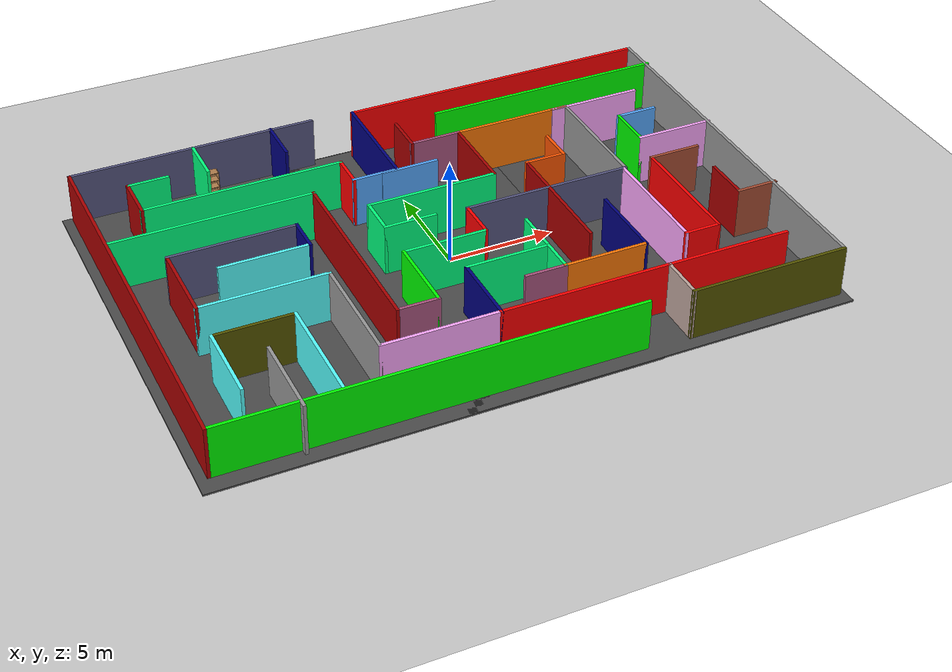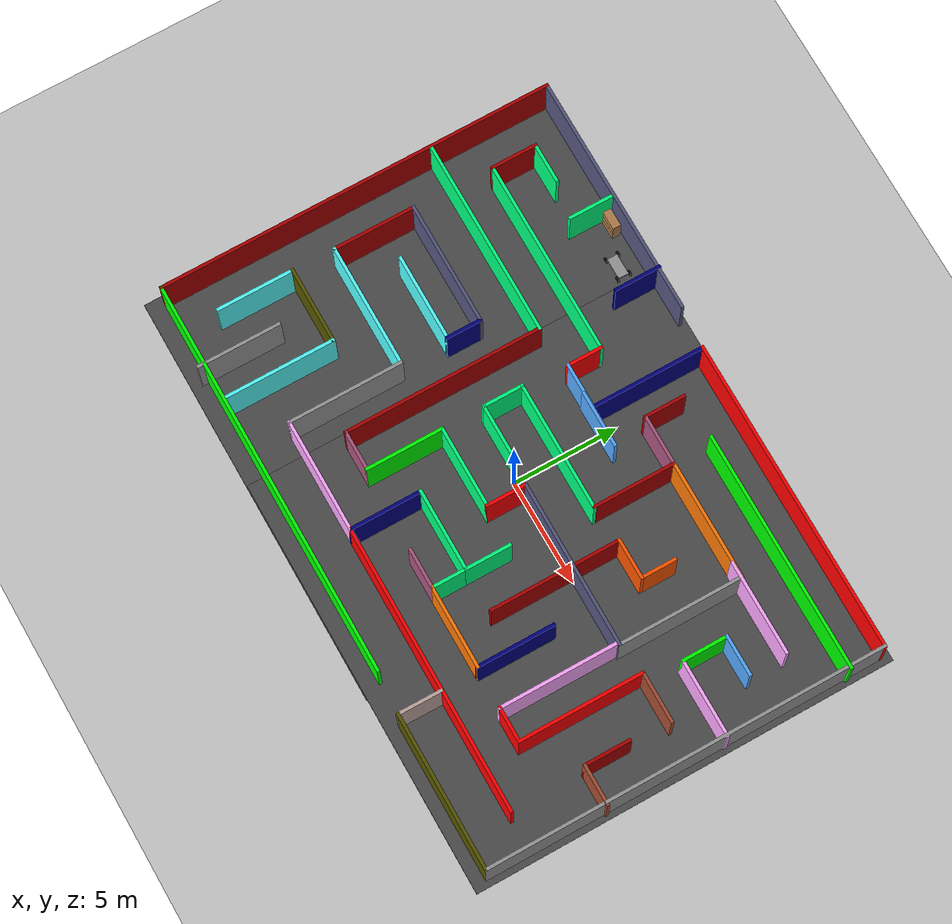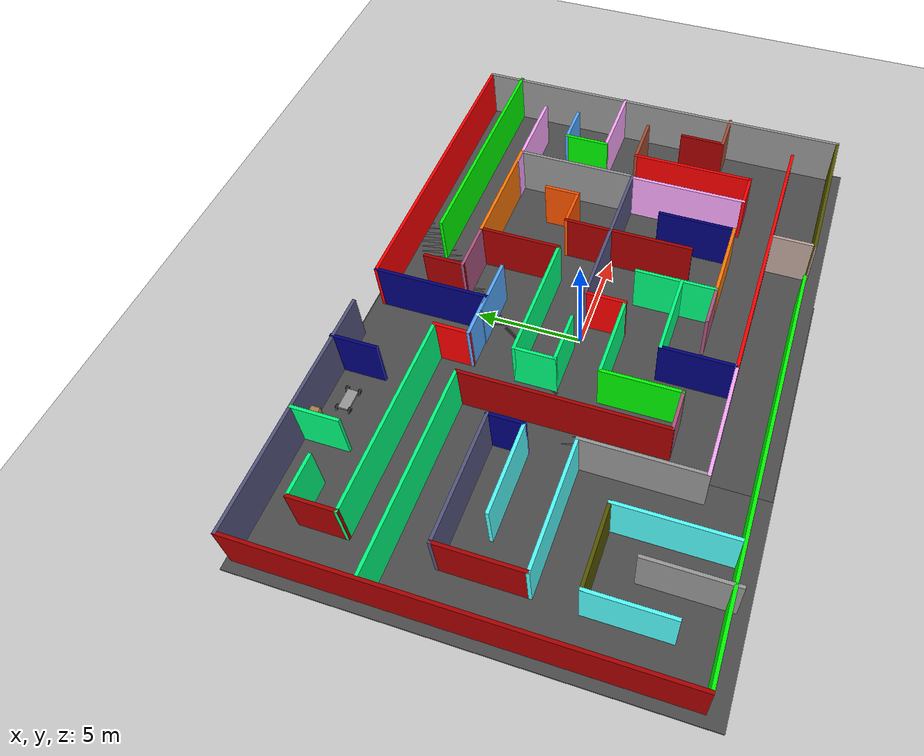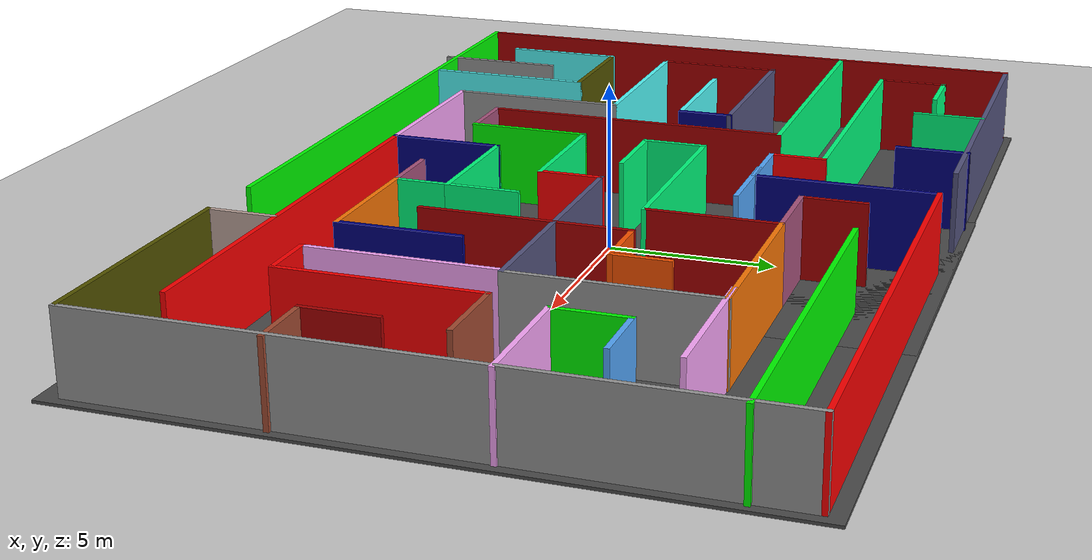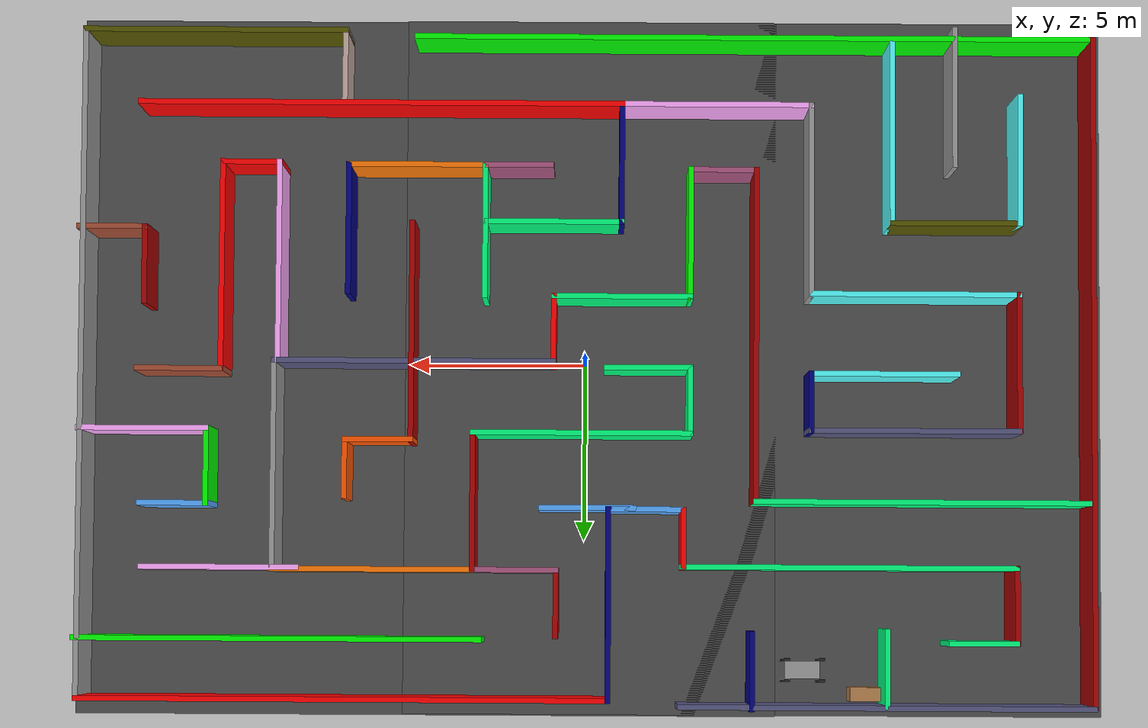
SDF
<sdf version="1.6">
 <world name="default">
  <model name="ground_plane">
   <static>1</static>
   <link name="link">
    <collision name="collision">
     <geometry><plane><normal>0 0 1</normal><size>100 100</size></plane></geometry>
     <surface><friction><ode><mu>100</mu><mu2>50</mu2></ode></friction></surface>
    </collision>
    <visual name="visual">
     <cast_shadows>0</cast_shadows>
     <geometry><plane><normal>0 0 1</normal><size>100 100</size></plane></geometry>
     <material>
      <script><uri>file://media/materials/scripts/gazebo.material</uri><name>Gazebo/Grey</name></script>
     </material>
    </visual>
   </link>
  </model>
  <model name="medium_coloured_maze">
   <pose>-0.015602 0.148995 0 0 -0 0</pose>
   <link name="Wall_0">
    <collision name="Wall_0_Collision">
     <geometry><box><size>19 0.15 2.5</size></box></geometry>
     <pose>0 0 1.25 0 -0 0</pose>
    </collision>
    <visual name="Wall_0_Visual">
     <pose>0 0 1.25 0 -0 0</pose>
     <geometry><box><size>19 0.15 2.5</size></box></geometry>
     <material>
      <script><uri>file://media/materials/scripts/gazebo.material</uri><name>Gazebo/Grey</name></script>
      <ambient>0.666667 0 0 1</ambient>
     </material>
    </visual>
    <pose>-14.2862 0.111227 0 0 0 -1.5708</pose>
   </link>
   <link name="Wall_1">
    <collision name="Wall_1_Collision">
     <geometry><box><size>19.25 0.15 2.5</size></box></geometry>
     <pose>0 0 1.25 0 -0 0</pose>
    </collision>
    <visual name="Wall_1_Visual">
     <pose>0 0 1.25 0 -0 0</pose>
     <geometry><box><size>19.25 0.15 2.5</size></box></geometry>
     <material>
      <script><uri>file://media/materials/scripts/gazebo.material</uri><name>Gazebo/Grey</name></script>
      <ambient>0 1 0 1</ambient>
     </material>
    </visual>
    <pose>-4.73615 -9.31377 0 0 -0 0</pose>
   </link>
   <link name="Wall_10">
    <collision name="Wall_10_Collision">
     <geometry><box><size>2.25 0.15 2.5</size></box></geometry>
     <pose>0 0 1.25 0 -0 0</pose>
    </collision>
    <visual name="Wall_10_Visual">
     <pose>0 0 1.25 0 -0 0</pose>
     <geometry><box><size>2.25 0.15 2.5</size></box></geometry>
     <material>
      <script><uri>file://media/materials/scripts/gazebo.material</uri><name>Gazebo/Grey</name></script>
      <ambient>0.666667 0 0 1</ambient>
     </material>
    </visual>
    <pose>-12.1169 6.6789 0 0 -0 1.5708</pose>
   </link>
   <link name="Wall_11">
    <collision name="Wall_11_Collision">
     <geometry><box><size>2 0.15 2.5</size></box></geometry>
     <pose>0 0 1.25 0 -0 0</pose>
    </collision>
    <visual name="Wall_11_Visual">
     <pose>0 0 1.25 0 -0 0</pose>
     <geometry><box><size>2 0.15 2.5</size></box></geometry>
     <material>
      <script><uri>file://media/materials/scripts/gazebo.material</uri><name>Gazebo/Grey</name></script>
      <ambient>0 1 0.498039 1</ambient>
     </material>
    </visual>
    <pose>-11.1919 7.7289 0 0 -0 0</pose>
   </link>
   <link name="Wall_13">
    <collision name="Wall_13_Collision">
     <geometry><box><size>11.75 0.15 2.5</size></box></geometry>
     <pose>0 0 1.25 0 -0 0</pose>
    </collision>
    <visual name="Wall_13_Visual">
     <pose>0 0 1.25 0 -0 0</pose>
     <geometry><box><size>11.75 0.15 2.5</size></box></geometry>
     <material>
      <script><uri>file://media/materials/scripts/gazebo.material</uri><name>Gazebo/Grey</name></script>
      <ambient>0.333333 0.333333 0.498039 1</ambient>
     </material>
    </visual>
    <pose>-8.48615 9.53623 0 0 -0 0</pose>
   </link>
   <link name="Wall_15">
    <collision name="Wall_15_Collision">
     <geometry><box><size>2.25 0.15 2.5</size></box></geometry>
     <pose>0 0 1.25 0 -0 0</pose>
    </collision>
    <visual name="Wall_15_Visual">
     <pose>0 0 1.25 0 -0 0</pose>
     <geometry><box><size>2.25 0.15 2.5</size></box></geometry>
     <material>
      <script><uri>file://media/materials/scripts/gazebo.material</uri><name>Gazebo/Grey</name></script>
      <ambient>0 1 0.498039 1</ambient>
     </material>
    </visual>
    <pose>-8.47981 8.45384 0 0 0 -1.5708</pose>
   </link>
   <link name="Wall_18">
    <collision name="Wall_18_Collision">
     <geometry><box><size>2.25 0.15 2.5</size></box></geometry>
     <pose>0 0 1.25 0 -0 0</pose>
    </collision>
    <visual name="Wall_18_Visual">
     <pose>0 0 1.25 0 -0 0</pose>
     <geometry><box><size>2.25 0.15 2.5</size></box></geometry>
     <material>
      <script><uri>file://media/materials/scripts/gazebo.material</uri><name>Gazebo/Grey</name></script>
      <ambient>0 0 0.498039 1</ambient>
     </material>
    </visual>
    <pose>-4.69991 8.53531 0 0 0 -1.5708</pose>
   </link>
   <link name="Wall_20">
    <collision name="Wall_20_Collision">
     <geometry><box><size>9.5 0.15 2.5</size></box></geometry>
     <pose>0 0 1.25 0 -0 0</pose>
    </collision>
    <visual name="Wall_20_Visual">
     <pose>0 0 1.25 0 -0 0</pose>
     <geometry><box><size>9.5 0.15 2.5</size></box></geometry>
     <material>
      <script><uri>file://media/materials/scripts/gazebo.material</uri><name>Gazebo/Grey</name></script>
      <ambient>0 1 0.498039 1</ambient>
     </material>
    </visual>
    <pose>-9.46955 3.79078 0 0 -0 0</pose>
   </link>
   <link name="Wall_21">
    <collision name="Wall_21_Collision">
     <geometry><box><size>9.5 0.15 2.5</size></box></geometry>
     <pose>0 0 1.25 0 -0 0</pose>
    </collision>
    <visual name="Wall_21_Visual">
     <pose>0 0 1.25 0 -0 0</pose>
     <geometry><box><size>9.5 0.15 2.5</size></box></geometry>
     <material>
      <script><uri>file://media/materials/scripts/gazebo.material</uri><name>Gazebo/Grey</name></script>
      <ambient>0.666667 0 0 1</ambient>
     </material>
    </visual>
    <pose>-4.79455 -0.884224 0 0 0 -1.5708</pose>
   </link>
   <link name="Wall_22">
    <collision name="Wall_22_Collision">
     <geometry><box><size>2 0.15 2.5</size></box></geometry>
     <pose>0 0 1.25 0 -0 0</pose>
    </collision>
    <visual name="Wall_22_Visual">
     <pose>0 0 1.25 0 -0 0</pose>
     <geometry><box><size>2 0.15 2.5</size></box></geometry>
     <material>
      <script><uri>file://media/materials/scripts/gazebo.material</uri><name>Gazebo/Grey</name></script>
      <ambient>0.666667 0.333333 0.498039 1</ambient>
     </material>
    </visual>
    <pose>-3.86955 -5.55922 0 0 -0 0</pose>
   </link>
   <link name="Wall_23">
    <collision name="Wall_23_Collision">
     <geometry><box><size>3.75 0.15 2.5</size></box></geometry>
     <pose>0 0 1.25 0 -0 0</pose>
    </collision>
    <visual name="Wall_23_Visual">
     <pose>0 0 1.25 0 -0 0</pose>
     <geometry><box><size>3.75 0.15 2.5</size></box></geometry>
     <material>
      <script><uri>file://media/materials/scripts/gazebo.material</uri><name>Gazebo/Grey</name></script>
      <ambient>0 1 0 1</ambient>
     </material>
    </visual>
    <pose>-2.94455 -3.75922 0 0 -0 1.5708</pose>
   </link>
   <link name="Wall_24">
    <collision name="Wall_24_Collision">
     <geometry><box><size>4 0.15 2.5</size></box></geometry>
     <pose>0 0 1.25 0 -0 0</pose>
    </collision>
    <visual name="Wall_24_Visual">
     <pose>0 0 1.25 0 -0 0</pose>
     <geometry><box><size>4 0.15 2.5</size></box></geometry>
     <material>
      <script><uri>file://media/materials/scripts/gazebo.material</uri><name>Gazebo/Grey</name></script>
      <ambient>0 1 0.498039 1</ambient>
     </material>
    </visual>
    <pose>-1.01955 -1.95922 0 0 -0 0</pose>
   </link>
   <link name="Wall_25">
    <collision name="Wall_25_Collision">
     <geometry><box><size>2 0.15 2.5</size></box></geometry>
     <pose>0 0 1.25 0 -0 0</pose>
    </collision>
    <visual name="Wall_25_Visual">
     <pose>0 0 1.25 0 -0 0</pose>
     <geometry><box><size>2 0.15 2.5</size></box></geometry>
     <material>
      <script><uri>file://media/materials/scripts/gazebo.material</uri><name>Gazebo/Grey</name></script>
      <ambient>1 0 0 1</ambient>
     </material>
    </visual>
    <pose>0.905454 -1.03422 0 0 -0 1.5708</pose>
   </link>
   <link name="Wall_26">
    <collision name="Wall_26_Collision">
     <geometry><box><size>8 0.15 2.5</size></box></geometry>
     <pose>0 0 1.25 0 -0 0</pose>
    </collision>
    <visual name="Wall_26_Visual">
     <pose>0 0 1.25 0 -0 0</pose>
     <geometry><box><size>8 0.15 2.5</size></box></geometry>
     <material>
      <script><uri>file://media/materials/scripts/gazebo.material</uri><name>Gazebo/Grey</name></script>
      <ambient>0.333333 0.333333 0.498039 1</ambient>
     </material>
    </visual>
    <pose>4.83045 -0.109224 0 0 -0 0</pose>
   </link>
   <link name="Wall_27">
    <collision name="Wall_27_Collision">
     <geometry><box><size>6 0.15 2.5</size></box></geometry>
     <pose>0 0 1.25 0 -0 0</pose>
    </collision>
    <visual name="Wall_27_Visual">
     <pose>0 0 1.25 0 -0 0</pose>
     <geometry><box><size>6 0.15 2.5</size></box></geometry>
     <material>
      <script><uri>file://media/materials/scripts/gazebo.material</uri><name>Gazebo/Grey</name></script>
      <ambient>0 0 0 1</ambient>
     </material>
    </visual>
    <pose>8.75545 2.81578 0 0 -0 1.5708</pose>
   </link>
   <link name="Wall_28">
    <collision name="Wall_28_Collision">
     <geometry><box><size>5.75 0.15 2.5</size></box></geometry>
     <pose>0 0 1.25 0 -0 0</pose>
    </collision>
    <visual name="Wall_28_Visual">
     <pose>0 0 1.25 0 -0 0</pose>
     <geometry><box><size>5.75 0.15 2.5</size></box></geometry>
     <material>
      <script><uri>file://media/materials/scripts/gazebo.material</uri><name>Gazebo/Grey</name></script>
      <ambient>0.996078 0.47451 0.0196078 1</ambient>
     </material>
    </visual>
    <pose>5.95545 5.74078 0 0 -0 3.14159</pose>
   </link>
   <link name="Wall_29">
    <collision name="Wall_29_Collision">
     <geometry><box><size>4 0.15 2.5</size></box></geometry>
     <pose>0 0 1.25 0 -0 0</pose>
    </collision>
    <visual name="Wall_29_Visual">
     <pose>0 0 1.25 0 -0 0</pose>
     <geometry><box><size>4 0.15 2.5</size></box></geometry>
     <material>
      <script><uri>file://media/materials/scripts/gazebo.material</uri><name>Gazebo/Grey</name></script>
      <ambient>0.666667 0 0 1</ambient>
     </material>
    </visual>
    <pose>3.15545 3.81578 0 0 0 -1.5708</pose>
   </link>
   <link name="Wall_3">
    <collision name="Wall_3_Collision">
     <geometry><box><size>7.5 0.15 2.5</size></box></geometry>
     <pose>0 0 1.25 0 -0 0</pose>
    </collision>
    <visual name="Wall_3_Visual">
     <pose>0 0 1.25 0 -0 0</pose>
     <geometry><box><size>7.5 0.15 2.5</size></box></geometry>
     <material>
      <script><uri>file://media/materials/scripts/gazebo.material</uri><name>Gazebo/Grey</name></script>
      <ambient>0.333333 0.333333 0 1</ambient>
     </material>
    </visual>
    <pose>10.5081 -9.4711 0 0 -0 0</pose>
   </link>
   <link name="Wall_30">
    <collision name="Wall_30_Collision">
     <geometry><box><size>6.25 0.15 2.5</size></box></geometry>
     <pose>0 0 1.25 0 -0 0</pose>
    </collision>
    <visual name="Wall_30_Visual">
     <pose>0 0 1.25 0 -0 0</pose>
     <geometry><box><size>6.25 0.15 2.5</size></box></geometry>
     <material>
      <script><uri>file://media/materials/scripts/gazebo.material</uri><name>Gazebo/Grey</name></script>
      <ambient>0 1 0.498039 1</ambient>
     </material>
    </visual>
    <pose>0.105454 1.89078 0 0 -0 3.14159</pose>
   </link>
   <link name="Wall_31">
    <collision name="Wall_31_Collision">
     <geometry><box><size>2 0.15 2.5</size></box></geometry>
     <pose>0 0 1.25 0 -0 0</pose>
    </collision>
    <visual name="Wall_31_Visual">
     <pose>0 0 1.25 0 -0 0</pose>
     <geometry><box><size>2 0.15 2.5</size></box></geometry>
     <material>
      <script><uri>file://media/materials/scripts/gazebo.material</uri><name>Gazebo/Grey</name></script>
      <ambient>0 1 0.498039 1</ambient>
     </material>
    </visual>
    <pose>-2.94455 0.965776 0 0 0 -1.5708</pose>
   </link>
   <link name="Wall_32">
    <collision name="Wall_32_Collision">
     <geometry><box><size>2.5 0.15 2.5</size></box></geometry>
     <pose>0 0 1.25 0 -0 0</pose>
    </collision>
    <visual name="Wall_32_Visual">
     <pose>0 0 1.25 0 -0 0</pose>
     <geometry><box><size>2.5 0.15 2.5</size></box></geometry>
     <material>
      <script><uri>file://media/materials/scripts/gazebo.material</uri><name>Gazebo/Grey</name></script>
      <ambient>0 1 0.498039 1</ambient>
     </material>
    </visual>
    <pose>-1.76955 0.040776 0 0 -0 0</pose>
   </link>
   <link name="Wall_34">
    <collision name="Wall_34_Collision">
     <geometry><box><size>4.25 0.15 2.5</size></box></geometry>
     <pose>0 0 1.25 0 -0 0</pose>
    </collision>
    <visual name="Wall_34_Visual">
     <pose>0 0 1.25 0 -0 0</pose>
     <geometry><box><size>4.25 0.15 2.5</size></box></geometry>
     <material>
      <script><uri>file://media/materials/scripts/gazebo.material</uri><name>Gazebo/Grey</name></script>
      <ambient>0.333333 1 1 1</ambient>
     </material>
    </visual>
    <pose>-8.39882 0.186302 0 0 -0 0</pose>
   </link>
   <link name="Wall_35">
    <collision name="Wall_35_Collision">
     <geometry><box><size>1.75 0.15 2.5</size></box></geometry>
     <pose>0 0 1.25 0 -0 0</pose>
    </collision>
    <visual name="Wall_35_Visual">
     <pose>0 0 1.25 0 -0 0</pose>
     <geometry><box><size>1.75 0.15 2.5</size></box></geometry>
     <material>
      <script><uri>file://media/materials/scripts/gazebo.material</uri><name>Gazebo/Grey</name></script>
      <ambient>0 0 0.498039 1</ambient>
     </material>
    </visual>
    <pose>-6.34882 0.986302 0 0 -0 1.5708</pose>
   </link>
   <link name="Wall_36">
    <collision name="Wall_36_Collision">
     <geometry><box><size>6 0.15 2.5</size></box></geometry>
     <pose>0 0 1.25 0 -0 0</pose>
    </collision>
    <visual name="Wall_36_Visual">
     <pose>0 0 1.25 0 -0 0</pose>
     <geometry><box><size>6 0.15 2.5</size></box></geometry>
     <material>
      <script><uri>file://media/materials/scripts/gazebo.material</uri><name>Gazebo/Grey</name></script>
      <ambient>0.333333 0.333333 0.498039 1</ambient>
     </material>
    </visual>
    <pose>-9.27382 1.7863 0 0 -0 3.14159</pose>
   </link>
   <link name="Wall_37">
    <collision name="Wall_37_Collision">
     <geometry><box><size>4 0.15 2.5</size></box></geometry>
     <pose>0 0 1.25 0 -0 0</pose>
    </collision>
    <visual name="Wall_37_Visual">
     <pose>0 0 1.25 0 -0 0</pose>
     <geometry><box><size>4 0.15 2.5</size></box></geometry>
     <material>
      <script><uri>file://media/materials/scripts/gazebo.material</uri><name>Gazebo/Grey</name></script>
      <ambient>0.666667 0 0 1</ambient>
     </material>
    </visual>
    <pose>-12.1988 -0.138698 0 0 0 -1.5708</pose>
   </link>
   <link name="Wall_38">
    <collision name="Wall_38_Collision">
     <geometry><box><size>6 0.15 2.5</size></box></geometry>
     <pose>0 0 1.25 0 -0 0</pose>
    </collision>
    <visual name="Wall_38_Visual">
     <pose>0 0 1.25 0 -0 0</pose>
     <geometry><box><size>6 0.15 2.5</size></box></geometry>
     <material>
      <script><uri>file://media/materials/scripts/gazebo.material</uri><name>Gazebo/Grey</name></script>
      <ambient>0.333333 1 1 1</ambient>
     </material>
    </visual>
    <pose>-9.27382 -2.0637 0 0 -0 0</pose>
   </link>
   <link name="Wall_39">
    <collision name="Wall_39_Collision">
     <geometry><box><size>5.5 0.15 2.5</size></box></geometry>
     <pose>0 0 1.25 0 -0 0</pose>
    </collision>
    <visual name="Wall_39_Visual">
     <pose>0 0 1.25 0 -0 0</pose>
     <geometry><box><size>5.5 0.15 2.5</size></box></geometry>
     <material>
      <script><uri>file://media/materials/scripts/gazebo.material</uri><name>Gazebo/Grey</name></script>
      <ambient>0 0 0 1</ambient>
     </material>
    </visual>
    <pose>-6.34882 -4.7387 0 0 0 -1.5708</pose>
   </link>
   <link name="Wall_4">
    <collision name="Wall_4_Collision">
     <geometry><box><size>19 0.15 2.5</size></box></geometry>
     <pose>0 0 1.25 0 -0 0</pose>
    </collision>
    <visual name="Wall_4_Visual">
     <pose>0 0 1.25 0 -0 0</pose>
     <geometry><box><size>19 0.15 2.5</size></box></geometry>
     <material>
      <script><uri>file://media/materials/scripts/gazebo.material</uri><name>Gazebo/Grey</name></script>
      <ambient>0 0 0 1</ambient>
     </material>
    </visual>
    <pose>14.1831 -0.046098 0 0 -0 1.5708</pose>
   </link>
   <link name="Wall_40">
    <collision name="Wall_40_Collision">
     <geometry><box><size>5.5 0.15 2.5</size></box></geometry>
     <pose>0 0 1.25 0 -0 0</pose>
    </collision>
    <visual name="Wall_40_Visual">
     <pose>0 0 1.25 0 -0 0</pose>
     <geometry><box><size>5.5 0.15 2.5</size></box></geometry>
     <material>
      <script><uri>file://media/materials/scripts/gazebo.material</uri><name>Gazebo/Grey</name></script>
      <ambient>1 0.666667 1 1</ambient>
     </material>
    </visual>
    <pose>-3.67382 -7.4137 0 0 -0 0</pose>
   </link>
   <link name="Wall_41">
    <collision name="Wall_41_Collision">
     <geometry><box><size>3.5 0.15 2.5</size></box></geometry>
     <pose>0 0 1.25 0 -0 0</pose>
    </collision>
    <visual name="Wall_41_Visual">
     <pose>0 0 1.25 0 -0 0</pose>
     <geometry><box><size>3.5 0.15 2.5</size></box></geometry>
     <material>
      <script><uri>file://media/materials/scripts/gazebo.material</uri><name>Gazebo/Grey</name></script>
      <ambient>0 0 0.498039 1</ambient>
     </material>
    </visual>
    <pose>-0.99882 -5.7387 0 0 -0 1.5708</pose>
   </link>
   <link name="Wall_42">
    <collision name="Wall_42_Collision">
     <geometry><box><size>4 0.15 2.5</size></box></geometry>
     <pose>0 0 1.25 0 -0 0</pose>
    </collision>
    <visual name="Wall_42_Visual">
     <pose>0 0 1.25 0 -0 0</pose>
     <geometry><box><size>4 0.15 2.5</size></box></geometry>
     <material>
      <script><uri>file://media/materials/scripts/gazebo.material</uri><name>Gazebo/Grey</name></script>
      <ambient>0 1 0.498039 1</ambient>
     </material>
    </visual>
    <pose>0.92618 -4.0637 0 0 -0 0</pose>
   </link>
   <link name="Wall_43">
    <collision name="Wall_43_Collision">
     <geometry><box><size>1.75 0.15 2.5</size></box></geometry>
     <pose>0 0 1.25 0 -0 0</pose>
    </collision>
    <visual name="Wall_43_Visual">
     <pose>0 0 1.25 0 -0 0</pose>
     <geometry><box><size>1.75 0.15 2.5</size></box></geometry>
     <material>
      <script><uri>file://media/materials/scripts/gazebo.material</uri><name>Gazebo/Grey</name></script>
      <ambient>0 1 0.498039 1</ambient>
     </material>
    </visual>
    <pose>2.85118 -4.8637 0 0 0 -1.5708</pose>
   </link>
   <link name="Wall_44">
    <collision name="Wall_44_Collision">
     <geometry><box><size>4 0.15 2.5</size></box></geometry>
     <pose>0 0 1.25 0 -0 0</pose>
    </collision>
    <visual name="Wall_44_Visual">
     <pose>0 0 1.25 0 -0 0</pose>
     <geometry><box><size>4 0.15 2.5</size></box></geometry>
     <material>
      <script><uri>file://media/materials/scripts/gazebo.material</uri><name>Gazebo/Grey</name></script>
      <ambient>0.996078 0.47451 0.0196078 1</ambient>
     </material>
    </visual>
    <pose>4.77618 -5.6637 0 0 -0 0</pose>
   </link>
   <link name="Wall_45">
    <collision name="Wall_45_Collision">
     <geometry><box><size>3.75 0.15 2.5</size></box></geometry>
     <pose>0 0 1.25 0 -0 0</pose>
    </collision>
    <visual name="Wall_45_Visual">
     <pose>0 0 1.25 0 -0 0</pose>
     <geometry><box><size>3.75 0.15 2.5</size></box></geometry>
     <material>
      <script><uri>file://media/materials/scripts/gazebo.material</uri><name>Gazebo/Grey</name></script>
      <ambient>0 0 0.498039 1</ambient>
     </material>
    </visual>
    <pose>6.70118 -3.8637 0 0 -0 1.5708</pose>
   </link>
   <link name="Wall_47">
    <collision name="Wall_47_Collision">
     <geometry><box><size>1.75 0.15 2.5</size></box></geometry>
     <pose>0 0 1.25 0 -0 0</pose>
    </collision>
    <visual name="Wall_47_Visual">
     <pose>0 0 1.25 0 -0 0</pose>
     <geometry><box><size>1.75 0.15 2.5</size></box></geometry>
     <material>
      <script><uri>file://media/materials/scripts/gazebo.material</uri><name>Gazebo/Grey</name></script>
      <ambient>1 0.333333 0 1</ambient>
     </material>
    </visual>
    <pose>6.75228 2.89952 0 0 0 -1.5708</pose>
   </link>
   <link name="Wall_48">
    <collision name="Wall_48_Collision">
     <geometry><box><size>2 0.15 2.5</size></box></geometry>
     <pose>0 0 1.25 0 -0 0</pose>
    </collision>
    <visual name="Wall_48_Visual">
     <pose>0 0 1.25 0 -0 0</pose>
     <geometry><box><size>2 0.15 2.5</size></box></geometry>
     <material>
      <script><uri>file://media/materials/scripts/gazebo.material</uri><name>Gazebo/Grey</name></script>
      <ambient>1 0.333333 0 1</ambient>
     </material>
    </visual>
    <pose>5.82728 2.09952 0 0 -0 3.14159</pose>
   </link>
   <link name="Wall_49">
    <collision name="Wall_49_Collision">
     <geometry><box><size>6.25 0.15 2.5</size></box></geometry>
     <pose>0 0 1.25 0 -0 0</pose>
    </collision>
    <visual name="Wall_49_Visual">
     <pose>0 0 1.25 0 -0 0</pose>
     <geometry><box><size>6.25 0.15 2.5</size></box></geometry>
     <material>
      <script><uri>file://media/materials/scripts/gazebo.material</uri><name>Gazebo/Grey</name></script>
      <ambient>0.666667 0 0 1</ambient>
     </material>
    </visual>
    <pose>4.90228 -0.950477 0 0 0 -1.5708</pose>
   </link>
   <link name="Wall_5">
    <collision name="Wall_5_Collision">
     <geometry><box><size>15 0.15 2.5</size></box></geometry>
     <pose>0 0 1.25 0 -0 0</pose>
    </collision>
    <visual name="Wall_5_Visual">
     <pose>0 0 1.25 0 -0 0</pose>
     <geometry><box><size>15 0.15 2.5</size></box></geometry>
     <material>
      <script><uri>file://media/materials/scripts/gazebo.material</uri><name>Gazebo/Grey</name></script>
      <ambient>1 0 0 1</ambient>
     </material>
    </visual>
    <pose>6.7581 9.3789 0 0 -0 3.14159</pose>
   </link>
   <link name="Wall_51">
    <collision name="Wall_51_Collision">
     <geometry><box><size>2.25 0.15 2.5</size></box></geometry>
     <pose>0 0 1.25 0 -0 0</pose>
    </collision>
    <visual name="Wall_51_Visual">
     <pose>0 0 1.25 0 -0 0</pose>
     <geometry><box><size>2.25 0.15 2.5</size></box></geometry>
     <material>
      <script><uri>file://media/materials/scripts/gazebo.material</uri><name>Gazebo/Grey</name></script>
      <ambient>0 1 0.498039 1</ambient>
     </material>
    </visual>
    <pose>2.85118 -3.0137 0 0 -0 1.5708</pose>
   </link>
   <link name="Wall_53">
    <collision name="Wall_53_Collision">
     <geometry><box><size>2 0.15 2.5</size></box></geometry>
     <pose>0 0 1.25 0 -0 0</pose>
    </collision>
    <visual name="Wall_53_Visual">
     <pose>0 0 1.25 0 -0 0</pose>
     <geometry><box><size>2 0.15 2.5</size></box></geometry>
     <material>
      <script><uri>file://media/materials/scripts/gazebo.material</uri><name>Gazebo/Grey</name></script>
      <ambient>0.666667 0.333333 0.498039 1</ambient>
     </material>
    </visual>
    <pose>1.92618 -5.6637 0 0 -0 3.14159</pose>
   </link>
   <link name="Wall_56">
    <collision name="Wall_56_Collision">
     <geometry><box><size>13.75 0.15 2.5</size></box></geometry>
     <pose>0 0 1.25 0 -0 0</pose>
    </collision>
    <visual name="Wall_56_Visual">
     <pose>0 0 1.25 0 -0 0</pose>
     <geometry><box><size>13.75 0.15 2.5</size></box></geometry>
     <material>
      <script><uri>file://media/materials/scripts/gazebo.material</uri><name>Gazebo/Grey</name></script>
      <ambient>1 0 0 1</ambient>
     </material>
    </visual>
    <pose>5.80118 -7.4137 0 0 -0 0</pose>
   </link>
   <link name="Wall_58">
    <collision name="Wall_58_Collision">
     <geometry><box><size>2.16629 0.15 2.5</size></box></geometry>
     <pose>0 0 1.25 0 -0 0</pose>
    </collision>
    <visual name="Wall_58_Visual">
     <pose>0 0 1.25 0 -0 0</pose>
     <geometry><box><size>2.16629 0.15 2.5</size></box></geometry>
     <material>
      <script><uri>file://media/materials/scripts/gazebo.material</uri><name>Gazebo/Grey</name></script>
      <ambient>0.760784 0.662745 0.627451 1</ambient>
     </material>
    </visual>
    <pose>6.84013 -8.46298 0 0 0 -1.57777</pose>
   </link>
   <link name="Wall_6">
    <collision name="Wall_6_Collision">
     <geometry><box><size>5.5 0.15 2.5</size></box></geometry>
     <pose>0 0 1.25 0 -0 0</pose>
    </collision>
    <visual name="Wall_6_Visual">
     <pose>0 0 1.25 0 -0 0</pose>
     <geometry><box><size>5.5 0.15 2.5</size></box></geometry>
     <material>
      <script><uri>file://media/materials/scripts/gazebo.material</uri><name>Gazebo/Grey</name></script>
      <ambient>0 0 0.498039 1</ambient>
     </material>
    </visual>
    <pose>-0.666901 6.7039 0 0 0 -1.5708</pose>
   </link>
   <link name="Wall_60">
    <collision name="Wall_60_Collision">
     <geometry><box><size>2.5 0.15 2.5</size></box></geometry>
     <pose>0 0 1.25 0 -0 0</pose>
    </collision>
    <visual name="Wall_60_Visual">
     <pose>0 0 1.25 0 -0 0</pose>
     <geometry><box><size>2.5 0.15 2.5</size></box></geometry>
     <material>
      <script><uri>file://media/materials/scripts/gazebo.material</uri><name>Gazebo/Bricks</name></script>
      <ambient>1 1 1 1</ambient>
     </material>
    </visual>
    <pose>11.4337 0.135142 0 0 -0 3.14159</pose>
   </link>
   <link name="Wall_61">
    <collision name="Wall_61_Collision">
     <geometry><box><size>6 0.15 2.5</size></box></geometry>
     <pose>0 0 1.25 0 -0 0</pose>
    </collision>
    <visual name="Wall_61_Visual">
     <pose>0 0 1.25 0 -0 0</pose>
     <geometry><box><size>6 0.15 2.5</size></box></geometry>
     <material>
      <script><uri>file://media/materials/scripts/gazebo.material</uri><name>Gazebo/Grey</name></script>
      <ambient>1 0 0 1</ambient>
     </material>
    </visual>
    <pose>10.2587 -2.78986 0 0 0 -1.5708</pose>
   </link>
   <link name="Wall_62">
    <collision name="Wall_62_Collision">
     <geometry><box><size>1.75 0.15 2.5</size></box></geometry>
     <pose>0 0 1.25 0 -0 0</pose>
    </collision>
    <visual name="Wall_62_Visual">
     <pose>0 0 1.25 0 -0 0</pose>
     <geometry><box><size>1.75 0.15 2.5</size></box></geometry>
     <material>
      <script><uri>file://media/materials/scripts/gazebo.material</uri><name>Gazebo/Grey</name></script>
      <ambient>1 0 0 1</ambient>
     </material>
    </visual>
    <pose>9.45865 -5.71486 0 0 -0 3.14159</pose>
   </link>
   <link name="Wall_63">
    <collision name="Wall_63_Collision">
     <geometry><box><size>5.75 0.15 2.5</size></box></geometry>
     <pose>0 0 1.25 0 -0 0</pose>
    </collision>
    <visual name="Wall_63_Visual">
     <pose>0 0 1.25 0 -0 0</pose>
     <geometry><box><size>5.75 0.15 2.5</size></box></geometry>
     <material>
      <script><uri>file://media/materials/scripts/gazebo.material</uri><name>Gazebo/Grey</name></script>
      <ambient>1 0.666667 1 1</ambient>
     </material>
    </visual>
    <pose>8.65865 -2.91486 0 0 -0 1.5708</pose>
   </link>
   <link name="Wall_65">
    <collision name="Wall_65_Collision">
     <geometry><box><size>2.25 0.15 2.5</size></box></geometry>
     <pose>0 0 1.25 0 -0 0</pose>
    </collision>
    <visual name="Wall_65_Visual">
     <pose>0 0 1.25 0 -0 0</pose>
     <geometry><box><size>2.25 0.15 2.5</size></box></geometry>
     <material>
      <script><uri>file://media/materials/scripts/gazebo.material</uri><name>Gazebo/Grey</name></script>
      <ambient>0.666667 0 0 1</ambient>
     </material>
    </visual>
    <pose>12.4362 -2.81236 0 0 0 -1.5708</pose>
   </link>
   <link name="Wall_66">
    <collision name="Wall_66_Collision">
     <geometry><box><size>2 0.15 2.5</size></box></geometry>
     <pose>0 0 1.25 0 -0 0</pose>
    </collision>
    <visual name="Wall_66_Visual">
     <pose>0 0 1.25 0 -0 0</pose>
     <geometry><box><size>2 0.15 2.5</size></box></geometry>
     <material>
      <script><uri>file://media/materials/scripts/gazebo.material</uri><name>Gazebo/Bricks</name></script>
      <ambient>1 1 1 1</ambient>
     </material>
    </visual>
    <pose>13.3612 -3.86236 0 0 -0 0</pose>
   </link>
   <link name="Wall_68">
    <collision name="Wall_68_Collision">
     <geometry><box><size>11.5 0.15 2.5</size></box></geometry>
     <pose>0 0 1.25 0 -0 0</pose>
    </collision>
    <visual name="Wall_68_Visual">
     <pose>0 0 1.25 0 -0 0</pose>
     <geometry><box><size>11.5 0.15 2.5</size></box></geometry>
     <material>
      <script><uri>file://media/materials/scripts/gazebo.material</uri><name>Gazebo/Grey</name></script>
      <ambient>0 1 0 1</ambient>
     </material>
    </visual>
    <pose>8.60983 7.69706 0 0 -0 0</pose>
   </link>
   <link name="Wall_7">
    <collision name="Wall_7_Collision">
     <geometry><box><size>2.25 0.15 2.5</size></box></geometry>
     <pose>0 0 1.25 0 -0 0</pose>
    </collision>
    <visual name="Wall_7_Visual">
     <pose>0 0 1.25 0 -0 0</pose>
     <geometry><box><size>2.25 0.15 2.5</size></box></geometry>
     <material>
      <script><uri>file://media/materials/scripts/gazebo.material</uri><name>Gazebo/Grey</name></script>
      <ambient>0.333333 0.666667 1 1</ambient>
     </material>
    </visual>
    <pose>-1.7169 4.0289 0 0 -0 3.14159</pose>
   </link>
   <link name="Wall_70">
    <collision name="Wall_70_Collision">
     <geometry><box><size>2 0.15 2.5</size></box></geometry>
     <pose>0 0 1.25 0 -0 0</pose>
    </collision>
    <visual name="Wall_70_Visual">
     <pose>0 0 1.25 0 -0 0</pose>
     <geometry><box><size>2 0.15 2.5</size></box></geometry>
     <material>
      <script><uri>file://media/materials/scripts/gazebo.material</uri><name>Gazebo/Grey</name></script>
      <ambient>0.333333 0.666667 1 1</ambient>
     </material>
    </visual>
    <pose>11.5594 3.91921 0 0 -0 3.14159</pose>
   </link>
   <link name="Wall_71">
    <collision name="Wall_71_Collision">
     <geometry><box><size>2.25 0.15 2.5</size></box></geometry>
     <pose>0 0 1.25 0 -0 0</pose>
    </collision>
    <visual name="Wall_71_Visual">
     <pose>0 0 1.25 0 -0 0</pose>
     <geometry><box><size>2.25 0.15 2.5</size></box></geometry>
     <material>
      <script><uri>file://media/materials/scripts/gazebo.material</uri><name>Gazebo/Grey</name></script>
      <ambient>0 1 0 1</ambient>
     </material>
    </visual>
    <pose>10.6344 2.86921 0 0 0 -1.5708</pose>
   </link>
   <link name="Wall_72">
    <collision name="Wall_72_Collision">
     <geometry><box><size>3.75 0.15 2.5</size></box></geometry>
     <pose>0 0 1.25 0 -0 0</pose>
    </collision>
    <visual name="Wall_72_Visual">
     <pose>0 0 1.25 0 -0 0</pose>
     <geometry><box><size>3.75 0.15 2.5</size></box></geometry>
     <material>
      <script><uri>file://media/materials/scripts/gazebo.material</uri><name>Gazebo/Grey</name></script>
      <ambient>1 0.666667 1 1</ambient>
     </material>
    </visual>
    <pose>12.4344 1.81921 0 0 -0 0</pose>
   </link>
   <link name="Wall_74">
    <collision name="Wall_74_Collision">
     <geometry><box><size>3.75 0.15 2.5</size></box></geometry>
     <pose>0 0 1.25 0 -0 0</pose>
    </collision>
    <visual name="Wall_74_Visual">
     <pose>0 0 1.25 0 -0 0</pose>
     <geometry><box><size>3.75 0.15 2.5</size></box></geometry>
     <material>
      <script><uri>file://media/materials/scripts/gazebo.material</uri><name>Gazebo/Grey</name></script>
      <ambient>0.333333 1 1 1</ambient>
     </material>
    </visual>
    <pose>-12.2291 -5.87671 0 0 -0 1.5708</pose>
   </link>
   <link name="Wall_75">
    <collision name="Wall_75_Collision">
     <geometry><box><size>3.75 0.15 2.5</size></box></geometry>
     <pose>0 0 1.25 0 -0 0</pose>
    </collision>
    <visual name="Wall_75_Visual">
     <pose>0 0 1.25 0 -0 0</pose>
     <geometry><box><size>3.75 0.15 2.5</size></box></geometry>
     <material>
      <script><uri>file://media/materials/scripts/gazebo.material</uri><name>Gazebo/Grey</name></script>
      <ambient>0.333333 0.333333 0 1</ambient>
     </material>
    </visual>
    <pose>-10.4291 -4.07671 0 0 -0 0</pose>
   </link>
   <link name="Wall_76">
    <collision name="Wall_76_Collision">
     <geometry><box><size>5.25 0.15 2.5</size></box></geometry>
     <pose>0 0 1.25 0 -0 0</pose>
    </collision>
    <visual name="Wall_76_Visual">
     <pose>0 0 1.25 0 -0 0</pose>
     <geometry><box><size>5.25 0.15 2.5</size></box></geometry>
     <material>
      <script><uri>file://media/materials/scripts/gazebo.material</uri><name>Gazebo/Grey</name></script>
      <ambient>0.333333 1 1 1</ambient>
     </material>
    </visual>
    <pose>-8.62905 -6.62671 0 0 0 -1.5708</pose>
   </link>
   <link name="Wall_78">
    <collision name="Wall_78_Collision">
     <geometry><box><size>4 0.15 2.5</size></box></geometry>
     <pose>0 0 1.25 0 -0 0</pose>
    </collision>
    <visual name="Wall_78_Visual">
     <pose>0 0 1.25 0 -0 0</pose>
     <geometry><box><size>4 0.15 2.5</size></box></geometry>
     <material>
      <script><uri>file://media/materials/scripts/gazebo.material</uri><name>Gazebo/Grey</name></script>
      <ambient>0 0 0 1</ambient>
     </material>
    </visual>
    <pose>-10.3926 -7.66031 0 0 0 -1.5708</pose>
   </link>
   <link name="Wall_8">
    <collision name="Wall_8_Collision">
     <geometry><box><size>1.75 0.15 2.5</size></box></geometry>
     <pose>0 0 1.25 0 -0 0</pose>
    </collision>
    <visual name="Wall_8_Visual">
     <pose>0 0 1.25 0 -0 0</pose>
     <geometry><box><size>1.75 0.15 2.5</size></box></geometry>
     <material>
      <script><uri>file://media/materials/scripts/gazebo.material</uri><name>Gazebo/Grey</name></script>
      <ambient>1 0 0 1</ambient>
     </material>
    </visual>
    <pose>-2.7669 4.8289 0 0 -0 1.5708</pose>
   </link>
   <link name="Wall_80">
    <collision name="Wall_80_Collision">
     <geometry><box><size>4.5 0.15 2.5</size></box></geometry>
     <pose>0 0 1.25 0 -0 0</pose>
    </collision>
    <visual name="Wall_80_Visual">
     <pose>0 0 1.25 0 -0 0</pose>
     <geometry><box><size>4.5 0.15 2.5</size></box></geometry>
     <material>
      <script><uri>file://media/materials/scripts/gazebo.material</uri><name>Gazebo/Grey</name></script>
      <ambient>1 0.666667 1 1</ambient>
     </material>
    </visual>
    <pose>10.2519 5.70319 0 0 -0 0</pose>
   </link>
   <link name="Wall_84">
    <collision name="Wall_84_Collision">
     <geometry><box><size>2.75 0.15 2.5</size></box></geometry>
     <pose>0 0 1.25 0 -0 0</pose>
    </collision>
    <visual name="Wall_84_Visual">
     <pose>0 0 1.25 0 -0 0</pose>
     <geometry><box><size>2.75 0.15 2.5</size></box></geometry>
     <material>
      <script><uri>file://media/materials/scripts/gazebo.material</uri><name>Gazebo/Grey</name></script>
      <ambient>0.333333 0.666667 1 1</ambient>
     </material>
    </visual>
    <pose>-0.070687 3.99264 0 0 -0 0</pose>
   </link>
   <link name="Wall_86">
    <collision name="Wall_86_Collision">
     <geometry><box><size>2.5 0.15 2.5</size></box></geometry>
     <pose>0 0 1.25 0 -0 0</pose>
    </collision>
    <visual name="Wall_86_Visual">
     <pose>0 0 1.25 0 -0 0</pose>
     <geometry><box><size>2.5 0.15 2.5</size></box></geometry>
     <material>
      <script><uri>file://media/materials/scripts/gazebo.material</uri><name>Gazebo/Grey</name></script>
      <ambient>0.666667 0.333333 0.498039 1</ambient>
     </material>
    </visual>
    <pose>1.98045 5.74078 0 0 -0 3.14159</pose>
   </link>
   <link name="Wall_87">
    <collision name="Wall_87_Collision">
     <geometry><box><size>2 0.15 2.5</size></box></geometry>
     <pose>0 0 1.25 0 -0 0</pose>
    </collision>
    <visual name="Wall_87_Visual">
     <pose>0 0 1.25 0 -0 0</pose>
     <geometry><box><size>2 0.15 2.5</size></box></geometry>
     <material>
      <script><uri>file://media/materials/scripts/gazebo.material</uri><name>Gazebo/Grey</name></script>
      <ambient>0.666667 0 0 1</ambient>
     </material>
    </visual>
    <pose>0.805454 6.66578 0 0 -0 1.5708</pose>
   </link>
   <link name="Wall_9">
    <collision name="Wall_9_Collision">
     <geometry><box><size>9.5 0.15 2.5</size></box></geometry>
     <pose>0 0 1.25 0 -0 0</pose>
    </collision>
    <visual name="Wall_9_Visual">
     <pose>0 0 1.25 0 -0 0</pose>
     <geometry><box><size>9.5 0.15 2.5</size></box></geometry>
     <material>
      <script><uri>file://media/materials/scripts/gazebo.material</uri><name>Gazebo/Grey</name></script>
      <ambient>0 1 0.498039 1</ambient>
     </material>
    </visual>
    <pose>-7.4419 5.6289 0 0 -0 3.14159</pose>
   </link>
   <static>1</static>
  </model>
  <model name="bookshelf">
   <static>1</static>
   <link name="link">
    <inertial><mass>1</mass></inertial>
    <collision name="back">
     <pose>0 0.005 0.6 0 -0 0</pose>
     <geometry><box><size>0.9 0.01 1.2</size></box></geometry>
    </collision>
    <visual name="visual1">
     <pose>0 0.005 0.6 0 -0 0</pose>
     <geometry><box><size>0.9 0.01 1.2</size></box></geometry>
     <material>
      <script><uri>file://media/materials/scripts/gazebo.material</uri><name>Gazebo/Wood</name></script>
     </material>
    </visual>
    <collision name="left_side">
     <pose>0.45 -0.195 0.6 0 -0 0</pose>
     <geometry><box><size>0.02 0.4 1.2</size></box></geometry>
    </collision>
    <visual name="visual2">
     <pose>0.45 -0.195 0.6 0 -0 0</pose>
     <geometry><box><size>0.02 0.4 1.2</size></box></geometry>
     <material>
      <script><uri>file://media/materials/scripts/gazebo.material</uri><name>Gazebo/Wood</name></script>
     </material>
    </visual>
    <collision name="right_side">
     <pose>-0.45 -0.195 0.6 0 -0 0</pose>
     <geometry><box><size>0.02 0.4 1.2</size></box></geometry>
    </collision>
    <visual name="visual3">
     <pose>-0.45 -0.195 0.6 0 -0 0</pose>
     <geometry><box><size>0.02 0.4 1.2</size></box></geometry>
     <material>
      <script><uri>file://media/materials/scripts/gazebo.material</uri><name>Gazebo/Wood</name></script>
     </material>
    </visual>
    <collision name="bottom">
     <pose>0 -0.195 0.03 0 -0 0</pose>
     <geometry><box><size>0.88 0.4 0.06</size></box></geometry>
    </collision>
    <visual name="visual4">
     <pose>0 -0.195 0.03 0 -0 0</pose>
     <geometry><box><size>0.88 0.4 0.06</size></box></geometry>
     <material>
      <script><uri>file://media/materials/scripts/gazebo.material</uri><name>Gazebo/Wood</name></script>
     </material>
    </visual>
    <collision name="top">
     <pose>0 -0.195 1.19 0 -0 0</pose>
     <geometry><box><size>0.88 0.4 0.02</size></box></geometry>
    </collision>
    <visual name="visual5">
     <pose>0 -0.195 1.19 0 -0 0</pose>
     <geometry><box><size>0.88 0.4 0.02</size></box></geometry>
     <material>
      <script><uri>file://media/materials/scripts/gazebo.material</uri><name>Gazebo/Wood</name></script>
     </material>
    </visual>
    <collision name="low_shelf">
     <pose>0 -0.195 0.43 0 -0 0</pose>
     <geometry><box><size>0.88 0.4 0.02</size></box></geometry>
    </collision>
    <visual name="visual6">
     <pose>0 -0.195 0.43 0 -0 0</pose>
     <geometry><box><size>0.88 0.4 0.02</size></box></geometry>
     <material>
      <script><uri>file://media/materials/scripts/gazebo.material</uri><name>Gazebo/Wood</name></script>
     </material>
    </visual>
    <collision name="high_shelf">
     <pose>0 -0.195 0.8 0 -0 0</pose>
     <geometry><box><size>0.88 0.4 0.02</size></box></geometry>
    </collision>
    <visual name="visual7">
     <pose>0 -0.195 0.8 0 -0 0</pose>
     <geometry><box><size>0.88 0.4 0.02</size></box></geometry>
     <material>
      <script><uri>file://media/materials/scripts/gazebo.material</uri><name>Gazebo/Wood</name></script>
     </material>
    </visual>
   </link>
   <pose>-7.98935 9.53232 0 0 -0 0</pose>
  </model>
  <model name="asphalt_plane">
   <static>1</static>
   <link name="link">
    <collision name="collision"><geometry><box><size>20 20 0.1</size></box></geometry></collision>
    <visual name="visual">
     <cast_shadows>0</cast_shadows>
     <geometry><box><size>20 20 0.1</size></box></geometry>
     <material>
      <script>
       <uri>model://asphalt_plane/materials/scripts</uri>
       <uri>model://asphalt_plane/materials/textures</uri>
       <name>vrc/asphalt</name>
      </script>
     </material>
    </visual>
   </link>
   <pose>4.52241 0.024318 0 0 -0 0</pose>
  </model>
  <model name="asphalt_plane_0">
   <static>1</static>
   <link name="link">
    <collision name="collision"><geometry><box><size>20 20 0.1</size></box></geometry></collision>
    <visual name="visual">
     <cast_shadows>0</cast_shadows>
     <geometry><box><size>20 20 0.1</size></box></geometry>
     <material>
      <script>
       <uri>model://asphalt_plane/materials/scripts</uri>
       <uri>model://asphalt_plane/materials/textures</uri>
       <name>vrc/asphalt</name>
      </script>
     </material>
    </visual>
   </link>
   <pose>-4.82142 -0.012158 0 0 -0 0</pose>
  </model>
  <model name="cart_front_steer">
   <link name="chassis">
    <pose>0 0 0.15 0 -0 0</pose>
    <inertial>
     <pose>0.1 0 0 0 -0 0</pose>
     <mass>10</mass>
     <inertia>
      <ixx>0.216667</ixx>
      <iyy>0.841667</iyy>
      <izz>1.04167</izz>
      <ixy>0</ixy>
      <ixz>0</ixz>
      <iyz>0</iyz>
     </inertia>
    </inertial>
    <collision name="collision"><geometry><box><size>1 0.5 0.1</size></box></geometry></collision>
    <visual name="visual">
     <geometry><box><size>1 0.5 0.1</size></box></geometry>
     <material>
      <script><uri>file://media/materials/scripts/gazebo.material</uri><name>Gazebo/Grey</name></script>
     </material>
    </visual>
   </link>
   <link name="wheel_front_left">
    <pose>0.5 0.298 0.15 -1.5708 -0.087266 0</pose>
    <inertial>
     <mass>0.5</mass>
     <inertia>
      <ixx>0.00307917</ixx>
      <iyy>0.00307917</iyy>
      <izz>0.005625</izz>
      <ixy>0</ixy>
      <ixz>0</ixz>
      <iyz>0</iyz>
     </inertia>
    </inertial>
    <collision name="collision">
     <geometry><cylinder><radius>0.15</radius><length>0.08</length></cylinder></geometry>
    </collision>
    <visual name="visual">
     <geometry><cylinder><radius>0.15</radius><length>0.08</length></cylinder></geometry>
     <material>
      <script><uri>file://media/materials/scripts/gazebo.material</uri><name>Gazebo/Black</name></script>
     </material>
    </visual>
   </link>
   <joint name="wheel_front_left_steer_spin" type="universal">
    <parent>chassis</parent>
    <child>wheel_front_left</child>
    <axis>
     <xyz>0 -1 0</xyz>
     <limit><lower>-0.610865</lower><upper>0.610865</upper></limit>
     <use_parent_model_frame>0</use_parent_model_frame>
     <dynamics><spring_reference>0</spring_reference><spring_stiffness>0</spring_stiffness></dynamics>
    </axis>
    <axis2>
     <xyz>0 0 1</xyz>
     <use_parent_model_frame>0</use_parent_model_frame>
     <dynamics><spring_reference>0</spring_reference><spring_stiffness>0</spring_stiffness></dynamics>
    </axis2>
   </joint>
   <link name="wheel_front_right">
    <pose>0.5 -0.298 0.15 -1.5708 -0.087266 0</pose>
    <inertial>
     <mass>0.5</mass>
     <inertia>
      <ixx>0.00307917</ixx>
      <iyy>0.00307917</iyy>
      <izz>0.005625</izz>
      <ixy>0</ixy>
      <ixz>0</ixz>
      <iyz>0</iyz>
     </inertia>
    </inertial>
    <collision name="collision">
     <geometry><cylinder><radius>0.15</radius><length>0.08</length></cylinder></geometry>
    </collision>
    <visual name="visual">
     <geometry><cylinder><radius>0.15</radius><length>0.08</length></cylinder></geometry>
     <material>
      <script><uri>file://media/materials/scripts/gazebo.material</uri><name>Gazebo/Black</name></script>
     </material>
    </visual>
   </link>
   <joint name="wheel_front_right_steer_spin" type="universal">
    <parent>chassis</parent>
    <child>wheel_front_right</child>
    <axis>
     <xyz>0 -1 0</xyz>
     <limit><lower>-0.610865</lower><upper>0.610865</upper></limit>
     <use_parent_model_frame>0</use_parent_model_frame>
     <dynamics><spring_reference>0</spring_reference><spring_stiffness>0</spring_stiffness></dynamics>
    </axis>
    <axis2>
     <xyz>0 0 1</xyz>
     <use_parent_model_frame>0</use_parent_model_frame>
     <dynamics><spring_reference>0</spring_reference><spring_stiffness>0</spring_stiffness></dynamics>
    </axis2>
   </joint>
   <link name="wheel_rear_left">
    <pose>-0.5 0.298 0.15 -1.5708 0 0</pose>
    <inertial>
     <mass>0.5</mass>
     <inertia>
      <ixx>0.00307917</ixx>
      <iyy>0.00307917</iyy>
      <izz>0.005625</izz>
      <ixy>0</ixy>
      <ixz>0</ixz>
      <iyz>0</iyz>
     </inertia>
    </inertial>
    <collision name="collision">
     <geometry><cylinder><radius>0.15</radius><length>0.08</length></cylinder></geometry>
    </collision>
    <visual name="visual">
     <geometry><cylinder><radius>0.15</radius><length>0.08</length></cylinder></geometry>
     <material>
      <script><uri>file://media/materials/scripts/gazebo.material</uri><name>Gazebo/Black</name></script>
     </material>
    </visual>
   </link>
   <joint name="wheel_rear_left_spin" type="revolute">
    <parent>chassis</parent>
    <child>wheel_rear_left</child>
    <axis>
     <xyz>0 0 1</xyz>
     <use_parent_model_frame>0</use_parent_model_frame>
     <limit><lower>-1e+16</lower><upper>1e+16</upper></limit>
     <dynamics><spring_reference>0</spring_reference><spring_stiffness>0</spring_stiffness></dynamics>
    </axis>
   </joint>
   <link name="wheel_rear_right">
    <pose>-0.5 -0.298 0.15 -1.5708 0 0</pose>
    <inertial>
     <mass>0.5</mass>
     <inertia>
      <ixx>0.00307917</ixx>
      <iyy>0.00307917</iyy>
      <izz>0.005625</izz>
      <ixy>0</ixy>
      <ixz>0</ixz>
      <iyz>0</iyz>
     </inertia>
    </inertial>
    <collision name="collision">
     <geometry><cylinder><radius>0.15</radius><length>0.08</length></cylinder></geometry>
    </collision>
    <visual name="visual">
     <geometry><cylinder><radius>0.15</radius><length>0.08</length></cylinder></geometry>
     <material>
      <script><uri>file://media/materials/scripts/gazebo.material</uri><name>Gazebo/Black</name></script>
     </material>
    </visual>
   </link>
   <joint name="wheel_rear_right_spin" type="revolute">
    <parent>chassis</parent>
    <child>wheel_rear_right</child>
    <axis>
     <xyz>0 0 1</xyz>
     <use_parent_model_frame>0</use_parent_model_frame>
     <limit><lower>-1e+16</lower><upper>1e+16</upper></limit>
     <dynamics><spring_reference>0</spring_reference><spring_stiffness>0</spring_stiffness></dynamics>
    </axis>
   </joint>
   <pose>-6.25992 8.68123 0 0 -0 0</pose>
  </model>
 </world>
</sdf>
